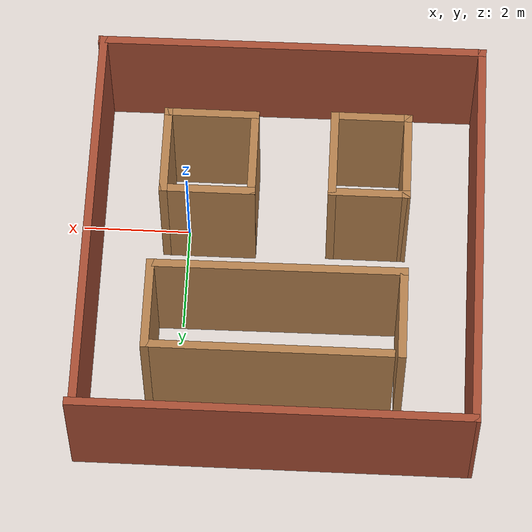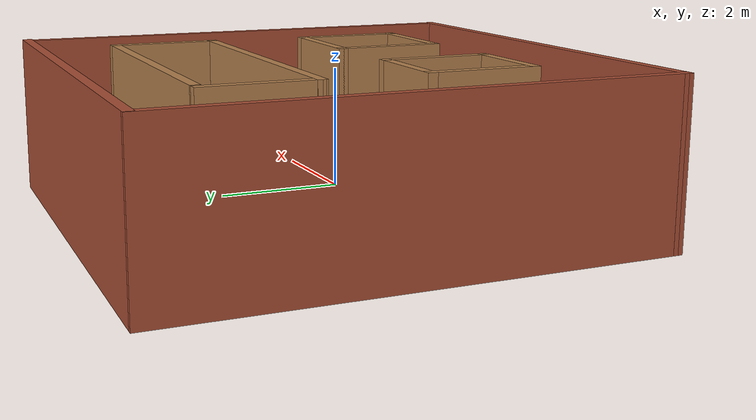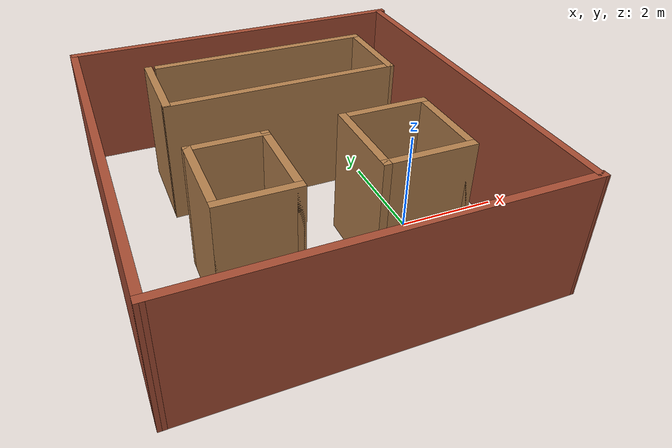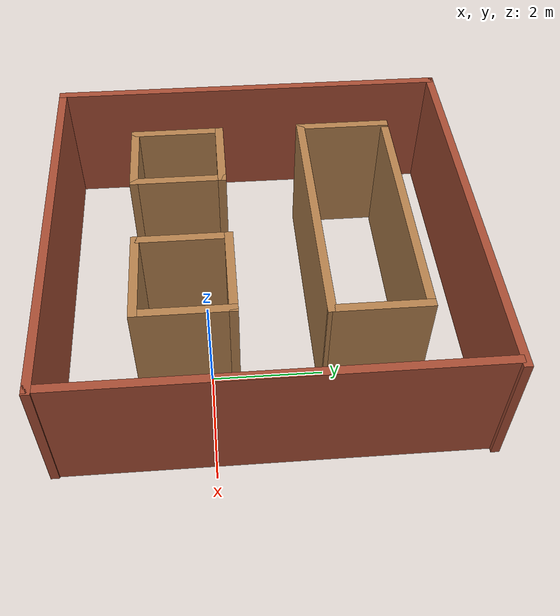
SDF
<?xml version='1.0'?>
<sdf version='1.7'>
  <model name='Two-Shapes-of--Box'>
    <pose>-1.79954 1.01203 0 0 -0 0</pose>
    <link name='Wall_0'>
      <collision name='Wall_0_Collision'>
        <geometry>
          <box>
            <size>7.25587 0.15 2.5</size>
          </box>
        </geometry>
        <pose>0 0 1.25 0 -0 0</pose>
      </collision>
      <visual name='Wall_0_Visual'>
        <pose>0 0 1.25 0 -0 0</pose>
        <geometry>
          <box>
            <size>7.25587 0.15 2.5</size>
          </box>
        </geometry>
        <material>
          <script>
            <uri>file://media/materials/scripts/gazebo.material</uri>
            <name>Gazebo/Bricks</name>
          </script>
          <ambient>1 1 1 1</ambient>
        </material>
        <meta>
          <layer>0</layer>
        </meta>
      </visual>
      <pose>-0.023549 -3.7178 0 0 -0 0.003743</pose>
    </link>
    <link name='Wall_1'>
      <collision name='Wall_1_Collision'>
        <geometry>
          <box>
            <size>7.5 0.15 2.5</size>
          </box>
        </geometry>
        <pose>0 0 1.25 0 -0 0</pose>
      </collision>
      <visual name='Wall_1_Visual'>
        <pose>0 0 1.25 0 -0 0</pose>
        <geometry>
          <box>
            <size>7.5 0.15 2.5</size>
          </box>
        </geometry>
        <material>
          <script>
            <uri>file://media/materials/scripts/gazebo.material</uri>
            <name>Gazebo/Bricks</name>
          </script>
          <ambient>1 1 1 1</ambient>
        </material>
        <meta>
          <layer>0</layer>
        </meta>
      </visual>
      <pose>3.50276 -0.029505 0 0 -0 1.5708</pose>
    </link>
    <link name='Wall_14'>
      <collision name='Wall_14_Collision'>
        <geometry>
          <box>
            <size>7.25 0.15 2.5</size>
          </box>
        </geometry>
        <pose>0 0 1.25 0 -0 0</pose>
      </collision>
      <visual name='Wall_14_Visual'>
        <pose>0 0 1.25 0 -0 0</pose>
        <geometry>
          <box>
            <size>7.25 0.15 2.5</size>
          </box>
        </geometry>
        <material>
          <script>
            <uri>file://media/materials/scripts/gazebo.material</uri>
            <name>Gazebo/Bricks</name>
          </script>
          <ambient>1 1 1 1</ambient>
        </material>
        <meta>
          <layer>0</layer>
        </meta>
      </visual>
      <pose>0.02674 3.73112 0 0 -0 0</pose>
    </link>
    <link name='Wall_16'>
      <collision name='Wall_16_Collision'>
        <geometry>
          <box>
            <size>1.75 0.15 2.5</size>
          </box>
        </geometry>
        <pose>0 0 1.25 0 -0 0</pose>
      </collision>
      <visual name='Wall_16_Visual'>
        <pose>0 0 1.25 0 -0 0</pose>
        <geometry>
          <box>
            <size>1.75 0.15 2.5</size>
          </box>
        </geometry>
        <material>
          <script>
            <uri>file://media/materials/scripts/gazebo.material</uri>
            <name>Gazebo/Wood</name>
          </script>
          <ambient>1 1 1 1</ambient>
        </material>
        <meta>
          <layer>0</layer>
        </meta>
      </visual>
      <pose>-2.22869 -1.44813 0 0 -0 -1.5708</pose>
    </link>
    <link name='Wall_17'>
      <collision name='Wall_17_Collision'>
        <geometry>
          <box>
            <size>1.5 0.15 2.5</size>
          </box>
        </geometry>
        <pose>0 0 1.25 0 -0 0</pose>
      </collision>
      <visual name='Wall_17_Visual'>
        <pose>0 0 1.25 0 -0 0</pose>
        <geometry>
          <box>
            <size>1.5 0.15 2.5</size>
          </box>
        </geometry>
        <material>
          <script>
            <uri>file://media/materials/scripts/gazebo.material</uri>
            <name>Gazebo/Wood</name>
          </script>
          <ambient>1 1 1 1</ambient>
        </material>
        <meta>
          <layer>0</layer>
        </meta>
      </visual>
      <pose>-1.55369 -2.24813 0 0 -0 0</pose>
    </link>
    <link name='Wall_18'>
      <collision name='Wall_18_Collision'>
        <geometry>
          <box>
            <size>1.75 0.15 2.5</size>
          </box>
        </geometry>
        <pose>0 0 1.25 0 -0 0</pose>
      </collision>
      <visual name='Wall_18_Visual'>
        <pose>0 0 1.25 0 -0 0</pose>
        <geometry>
          <box>
            <size>1.75 0.15 2.5</size>
          </box>
        </geometry>
        <material>
          <script>
            <uri>file://media/materials/scripts/gazebo.material</uri>
            <name>Gazebo/Wood</name>
          </script>
          <ambient>1 1 1 1</ambient>
        </material>
        <meta>
          <layer>0</layer>
        </meta>
      </visual>
      <pose>-0.878694 -1.44813 0 0 -0 1.5708</pose>
    </link>
    <link name='Wall_19'>
      <collision name='Wall_19_Collision'>
        <geometry>
          <box>
            <size>1.5 0.15 2.5</size>
          </box>
        </geometry>
        <pose>0 0 1.25 0 -0 0</pose>
      </collision>
      <visual name='Wall_19_Visual'>
        <pose>0 0 1.25 0 -0 0</pose>
        <geometry>
          <box>
            <size>1.5 0.15 2.5</size>
          </box>
        </geometry>
        <material>
          <script>
            <uri>file://media/materials/scripts/gazebo.material</uri>
            <name>Gazebo/Wood</name>
          </script>
          <ambient>1 1 1 1</ambient>
        </material>
        <meta>
          <layer>0</layer>
        </meta>
      </visual>
      <pose>-1.55369 -0.648131 0 0 -0 3.14159</pose>
    </link>
    <link name='Wall_21'>
      <collision name='Wall_21_Collision'>
        <geometry>
          <box>
            <size>1.75 0.15 2.5</size>
          </box>
        </geometry>
        <pose>0 0 1.25 0 -0 0</pose>
      </collision>
      <visual name='Wall_21_Visual'>
        <pose>0 0 1.25 0 -0 0</pose>
        <geometry>
          <box>
            <size>1.75 0.15 2.5</size>
          </box>
        </geometry>
        <material>
          <script>
            <uri>file://media/materials/scripts/gazebo.material</uri>
            <name>Gazebo/Wood</name>
          </script>
          <ambient>1 1 1 1</ambient>
        </material>
        <meta>
          <layer>0</layer>
        </meta>
      </visual>
      <pose>0.590927 -1.39493 0 0 -0 -1.5708</pose>
    </link>
    <link name='Wall_22'>
      <collision name='Wall_22_Collision'>
        <geometry>
          <box>
            <size>1.75 0.15 2.5</size>
          </box>
        </geometry>
        <pose>0 0 1.25 0 -0 0</pose>
      </collision>
      <visual name='Wall_22_Visual'>
        <pose>0 0 1.25 0 -0 0</pose>
        <geometry>
          <box>
            <size>1.75 0.15 2.5</size>
          </box>
        </geometry>
        <material>
          <script>
            <uri>file://media/materials/scripts/gazebo.material</uri>
            <name>Gazebo/Wood</name>
          </script>
          <ambient>1 1 1 1</ambient>
        </material>
        <meta>
          <layer>0</layer>
        </meta>
      </visual>
      <pose>1.39093 -2.19493 0 0 -0 0</pose>
    </link>
    <link name='Wall_23'>
      <collision name='Wall_23_Collision'>
        <geometry>
          <box>
            <size>1.75 0.15 2.5</size>
          </box>
        </geometry>
        <pose>0 0 1.25 0 -0 0</pose>
      </collision>
      <visual name='Wall_23_Visual'>
        <pose>0 0 1.25 0 -0 0</pose>
        <geometry>
          <box>
            <size>1.75 0.15 2.5</size>
          </box>
        </geometry>
        <material>
          <script>
            <uri>file://media/materials/scripts/gazebo.material</uri>
            <name>Gazebo/Wood</name>
          </script>
          <ambient>1 1 1 1</ambient>
        </material>
        <meta>
          <layer>0</layer>
        </meta>
      </visual>
      <pose>2.19093 -1.39493 0 0 -0 1.5708</pose>
    </link>
    <link name='Wall_24'>
      <collision name='Wall_24_Collision'>
        <geometry>
          <box>
            <size>1.75 0.15 2.5</size>
          </box>
        </geometry>
        <pose>0 0 1.25 0 -0 0</pose>
      </collision>
      <visual name='Wall_24_Visual'>
        <pose>0 0 1.25 0 -0 0</pose>
        <geometry>
          <box>
            <size>1.75 0.15 2.5</size>
          </box>
        </geometry>
        <material>
          <script>
            <uri>file://media/materials/scripts/gazebo.material</uri>
            <name>Gazebo/Wood</name>
          </script>
          <ambient>1 1 1 1</ambient>
        </material>
        <meta>
          <layer>0</layer>
        </meta>
      </visual>
      <pose>1.39093 -0.594931 0 0 -0 3.14159</pose>
    </link>
    <link name='Wall_28'>
      <collision name='Wall_28_Collision'>
        <geometry>
          <box>
            <size>1.75 0.15 2.5</size>
          </box>
        </geometry>
        <pose>0 0 1.25 0 -0 0</pose>
      </collision>
      <visual name='Wall_28_Visual'>
        <pose>0 0 1.25 0 -0 0</pose>
        <geometry>
          <box>
            <size>1.75 0.15 2.5</size>
          </box>
        </geometry>
        <material>
          <script>
            <uri>file://media/materials/scripts/gazebo.material</uri>
            <name>Gazebo/Wood</name>
          </script>
          <ambient>1 1 1 1</ambient>
        </material>
        <meta>
          <layer>0</layer>
        </meta>
      </visual>
      <pose>-2.22869 1.75449 0 0 -0 -1.5708</pose>
    </link>
    <link name='Wall_29'>
      <collision name='Wall_29_Collision'>
        <geometry>
          <box>
            <size>4.69688 0.15 2.5</size>
          </box>
        </geometry>
        <pose>0 0 1.25 0 -0 0</pose>
      </collision>
      <visual name='Wall_29_Visual'>
        <pose>0 0 1.25 0 -0 0</pose>
        <geometry>
          <box>
            <size>4.69688 0.15 2.5</size>
          </box>
        </geometry>
        <material>
          <script>
            <uri>file://media/materials/scripts/gazebo.material</uri>
            <name>Gazebo/Wood</name>
          </script>
          <ambient>1 1 1 1</ambient>
        </material>
        <meta>
          <layer>0</layer>
        </meta>
      </visual>
      <pose>0.044706 0.941191 0 0 -0 0.00585</pose>
    </link>
    <link name='Wall_3'>
      <collision name='Wall_3_Collision'>
        <geometry>
          <box>
            <size>7.61227 0.15 2.5</size>
          </box>
        </geometry>
        <pose>0 0 1.25 0 -0 0</pose>
      </collision>
      <visual name='Wall_3_Visual'>
        <pose>0 0 1.25 0 -0 0</pose>
        <geometry>
          <box>
            <size>7.61227 0.15 2.5</size>
          </box>
        </geometry>
        <material>
          <script>
            <uri>file://media/materials/scripts/gazebo.material</uri>
            <name>Gazebo/Bricks</name>
          </script>
          <ambient>1 1 1 1</ambient>
        </material>
        <meta>
          <layer>0</layer>
        </meta>
      </visual>
      <pose>-3.56316 7e-06 0 0 -0 -1.57436</pose>
    </link>
    <link name='Wall_30'>
      <collision name='Wall_30_Collision'>
        <geometry>
          <box>
            <size>1.75 0.15 2.5</size>
          </box>
        </geometry>
        <pose>0 0 1.25 0 -0 0</pose>
      </collision>
      <visual name='Wall_30_Visual'>
        <pose>0 0 1.25 0 -0 0</pose>
        <geometry>
          <box>
            <size>1.75 0.15 2.5</size>
          </box>
        </geometry>
        <material>
          <script>
            <uri>file://media/materials/scripts/gazebo.material</uri>
            <name>Gazebo/Wood</name>
          </script>
          <ambient>1 1 1 1</ambient>
        </material>
        <meta>
          <layer>0</layer>
        </meta>
      </visual>
      <pose>2.31811 1.75449 0 0 -0 1.5708</pose>
    </link>
    <link name='Wall_31'>
      <collision name='Wall_31_Collision'>
        <geometry>
          <box>
            <size>4.5 0.15 2.5</size>
          </box>
        </geometry>
        <pose>0 0 1.25 0 -0 0</pose>
      </collision>
      <visual name='Wall_31_Visual'>
        <pose>0 0 1.25 0 -0 0</pose>
        <geometry>
          <box>
            <size>4.5 0.15 2.5</size>
          </box>
        </geometry>
        <material>
          <script>
            <uri>file://media/materials/scripts/gazebo.material</uri>
            <name>Gazebo/Wood</name>
          </script>
          <ambient>1 1 1 1</ambient>
        </material>
        <meta>
          <layer>0</layer>
        </meta>
      </visual>
      <pose>0.143106 2.55449 0 0 -0 3.14159</pose>
    </link>
    <static>1</static>
  </model>
</sdf>
